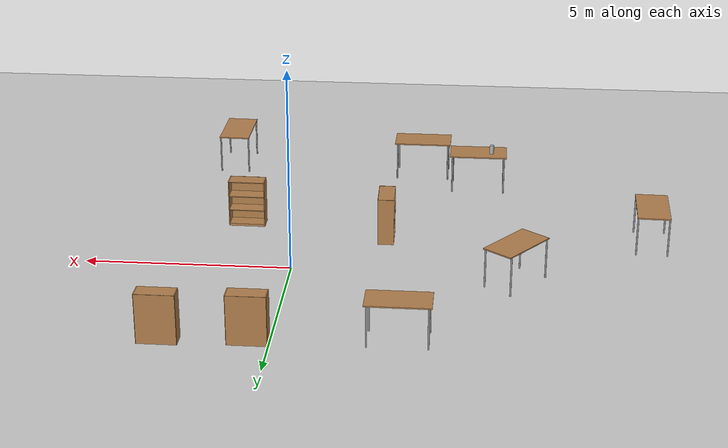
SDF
<sdf version="1.6">
 <world name="default">
  <model name="ground_plane">
   <static>1</static>
   <link name="link">
    <collision name="collision">
     <geometry><plane><normal>0 0 1</normal><size>100 100</size></plane></geometry>
     <surface>
      <contact><collide_bitmask>65535</collide_bitmask></contact>
      <friction><ode><mu>100</mu><mu2>50</mu2></ode></friction>
     </surface>
    </collision>
    <visual name="visual">
     <cast_shadows>0</cast_shadows>
     <geometry><plane><normal>0 0 1</normal><size>100 100</size></plane></geometry>
     <material>
      <script><uri>file://media/materials/scripts/gazebo.material</uri><name>Gazebo/Grey</name></script>
     </material>
    </visual>
   </link>
  </model>
  <model name="table">
   <static>1</static>
   <link name="link">
    <collision name="surface">
     <pose>0 0 1 0 -0 0</pose>
     <geometry><box><size>1.5 0.8 0.03</size></box></geometry>
     <surface><friction><ode><mu>0.6</mu><mu2>0.6</mu2></ode></friction></surface>
    </collision>
    <visual name="visual1">
     <pose>0 0 1 0 -0 0</pose>
     <geometry><box><size>1.5 0.8 0.03</size></box></geometry>
     <material>
      <script><uri>file://media/materials/scripts/gazebo.material</uri><name>Gazebo/Wood</name></script>
     </material>
    </visual>
    <collision name="front_left_leg">
     <pose>0.68 0.38 0.5 0 -0 0</pose>
     <geometry><cylinder><radius>0.02</radius><length>1</length></cylinder></geometry>
    </collision>
    <visual name="front_left_leg">
     <pose>0.68 0.38 0.5 0 -0 0</pose>
     <geometry><cylinder><radius>0.02</radius><length>1</length></cylinder></geometry>
     <material>
      <script><uri>file://media/materials/scripts/gazebo.material</uri><name>Gazebo/Grey</name></script>
     </material>
    </visual>
    <collision name="front_right_leg">
     <pose>0.68 -0.38 0.5 0 -0 0</pose>
     <geometry><cylinder><radius>0.02</radius><length>1</length></cylinder></geometry>
    </collision>
    <visual name="front_right_leg">
     <pose>0.68 -0.38 0.5 0 -0 0</pose>
     <geometry><cylinder><radius>0.02</radius><length>1</length></cylinder></geometry>
     <material>
      <script><uri>file://media/materials/scripts/gazebo.material</uri><name>Gazebo/Grey</name></script>
     </material>
    </visual>
    <collision name="back_right_leg">
     <pose>-0.68 -0.38 0.5 0 -0 0</pose>
     <geometry><cylinder><radius>0.02</radius><length>1</length></cylinder></geometry>
    </collision>
    <visual name="back_right_leg">
     <pose>-0.68 -0.38 0.5 0 -0 0</pose>
     <geometry><cylinder><radius>0.02</radius><length>1</length></cylinder></geometry>
     <material>
      <script><uri>file://media/materials/scripts/gazebo.material</uri><name>Gazebo/Grey</name></script>
     </material>
    </visual>
    <collision name="back_left_leg">
     <pose>-0.68 0.38 0.5 0 -0 0</pose>
     <geometry><cylinder><radius>0.02</radius><length>1</length></cylinder></geometry>
    </collision>
    <visual name="back_left_leg">
     <pose>-0.68 0.38 0.5 0 -0 0</pose>
     <geometry><cylinder><radius>0.02</radius><length>1</length></cylinder></geometry>
     <material>
      <script><uri>file://media/materials/scripts/gazebo.material</uri><name>Gazebo/Grey</name></script>
     </material>
    </visual>
   </link>
   <pose>-5.37303 0.274904 0 0 0 -2.22515</pose>
  </model>
  <model name="table_0">
   <static>1</static>
   <link name="link">
    <collision name="surface">
     <pose>0 0 1 0 -0 0</pose>
     <geometry><box><size>1.5 0.8 0.03</size></box></geometry>
     <surface><friction><ode><mu>0.6</mu><mu2>0.6</mu2></ode></friction></surface>
    </collision>
    <visual name="visual1">
     <pose>0 0 1 0 -0 0</pose>
     <geometry><box><size>1.5 0.8 0.03</size></box></geometry>
     <material>
      <script><uri>file://media/materials/scripts/gazebo.material</uri><name>Gazebo/Wood</name></script>
     </material>
    </visual>
    <collision name="front_left_leg">
     <pose>0.68 0.38 0.5 0 -0 0</pose>
     <geometry><cylinder><radius>0.02</radius><length>1</length></cylinder></geometry>
    </collision>
    <visual name="front_left_leg">
     <pose>0.68 0.38 0.5 0 -0 0</pose>
     <geometry><cylinder><radius>0.02</radius><length>1</length></cylinder></geometry>
     <material>
      <script><uri>file://media/materials/scripts/gazebo.material</uri><name>Gazebo/Grey</name></script>
     </material>
    </visual>
    <collision name="front_right_leg">
     <pose>0.68 -0.38 0.5 0 -0 0</pose>
     <geometry><cylinder><radius>0.02</radius><length>1</length></cylinder></geometry>
    </collision>
    <visual name="front_right_leg">
     <pose>0.68 -0.38 0.5 0 -0 0</pose>
     <geometry><cylinder><radius>0.02</radius><length>1</length></cylinder></geometry>
     <material>
      <script><uri>file://media/materials/scripts/gazebo.material</uri><name>Gazebo/Grey</name></script>
     </material>
    </visual>
    <collision name="back_right_leg">
     <pose>-0.68 -0.38 0.5 0 -0 0</pose>
     <geometry><cylinder><radius>0.02</radius><length>1</length></cylinder></geometry>
    </collision>
    <visual name="back_right_leg">
     <pose>-0.68 -0.38 0.5 0 -0 0</pose>
     <geometry><cylinder><radius>0.02</radius><length>1</length></cylinder></geometry>
     <material>
      <script><uri>file://media/materials/scripts/gazebo.material</uri><name>Gazebo/Grey</name></script>
     </material>
    </visual>
    <collision name="back_left_leg">
     <pose>-0.68 0.38 0.5 0 -0 0</pose>
     <geometry><cylinder><radius>0.02</radius><length>1</length></cylinder></geometry>
    </collision>
    <visual name="back_left_leg">
     <pose>-0.68 0.38 0.5 0 -0 0</pose>
     <geometry><cylinder><radius>0.02</radius><length>1</length></cylinder></geometry>
     <material>
      <script><uri>file://media/materials/scripts/gazebo.material</uri><name>Gazebo/Grey</name></script>
     </material>
    </visual>
   </link>
   <pose>-2.87312 -6.30679 0 0 -0 0</pose>
  </model>
  <model name="table_1">
   <static>1</static>
   <link name="link">
    <collision name="surface">
     <pose>0 0 1 0 -0 0</pose>
     <geometry><box><size>1.5 0.8 0.03</size></box></geometry>
     <surface><friction><ode><mu>0.6</mu><mu2>0.6</mu2></ode></friction></surface>
    </collision>
    <visual name="visual1">
     <pose>0 0 1 0 -0 0</pose>
     <geometry><box><size>1.5 0.8 0.03</size></box></geometry>
     <material>
      <script><uri>file://media/materials/scripts/gazebo.material</uri><name>Gazebo/Wood</name></script>
     </material>
    </visual>
    <collision name="front_left_leg">
     <pose>0.68 0.38 0.5 0 -0 0</pose>
     <geometry><cylinder><radius>0.02</radius><length>1</length></cylinder></geometry>
    </collision>
    <visual name="front_left_leg">
     <pose>0.68 0.38 0.5 0 -0 0</pose>
     <geometry><cylinder><radius>0.02</radius><length>1</length></cylinder></geometry>
     <material>
      <script><uri>file://media/materials/scripts/gazebo.material</uri><name>Gazebo/Grey</name></script>
     </material>
    </visual>
    <collision name="front_right_leg">
     <pose>0.68 -0.38 0.5 0 -0 0</pose>
     <geometry><cylinder><radius>0.02</radius><length>1</length></cylinder></geometry>
    </collision>
    <visual name="front_right_leg">
     <pose>0.68 -0.38 0.5 0 -0 0</pose>
     <geometry><cylinder><radius>0.02</radius><length>1</length></cylinder></geometry>
     <material>
      <script><uri>file://media/materials/scripts/gazebo.material</uri><name>Gazebo/Grey</name></script>
     </material>
    </visual>
    <collision name="back_right_leg">
     <pose>-0.68 -0.38 0.5 0 -0 0</pose>
     <geometry><cylinder><radius>0.02</radius><length>1</length></cylinder></geometry>
    </collision>
    <visual name="back_right_leg">
     <pose>-0.68 -0.38 0.5 0 -0 0</pose>
     <geometry><cylinder><radius>0.02</radius><length>1</length></cylinder></geometry>
     <material>
      <script><uri>file://media/materials/scripts/gazebo.material</uri><name>Gazebo/Grey</name></script>
     </material>
    </visual>
    <collision name="back_left_leg">
     <pose>-0.68 0.38 0.5 0 -0 0</pose>
     <geometry><cylinder><radius>0.02</radius><length>1</length></cylinder></geometry>
    </collision>
    <visual name="back_left_leg">
     <pose>-0.68 0.38 0.5 0 -0 0</pose>
     <geometry><cylinder><radius>0.02</radius><length>1</length></cylinder></geometry>
     <material>
      <script><uri>file://media/materials/scripts/gazebo.material</uri><name>Gazebo/Grey</name></script>
     </material>
    </visual>
   </link>
   <pose>-2.80982 3.3973 0 0 -0 0</pose>
  </model>
  <model name="table_2">
   <static>1</static>
   <link name="link">
    <collision name="surface">
     <pose>0 0 1 0 -0 0</pose>
     <geometry><box><size>1.5 0.8 0.03</size></box></geometry>
     <surface><friction><ode><mu>0.6</mu><mu2>0.6</mu2></ode></friction></surface>
    </collision>
    <visual name="visual1">
     <pose>0 0 1 0 -0 0</pose>
     <geometry><box><size>1.5 0.8 0.03</size></box></geometry>
     <material>
      <script><uri>file://media/materials/scripts/gazebo.material</uri><name>Gazebo/Wood</name></script>
     </material>
    </visual>
    <collision name="front_left_leg">
     <pose>0.68 0.38 0.5 0 -0 0</pose>
     <geometry><cylinder><radius>0.02</radius><length>1</length></cylinder></geometry>
    </collision>
    <visual name="front_left_leg">
     <pose>0.68 0.38 0.5 0 -0 0</pose>
     <geometry><cylinder><radius>0.02</radius><length>1</length></cylinder></geometry>
     <material>
      <script><uri>file://media/materials/scripts/gazebo.material</uri><name>Gazebo/Grey</name></script>
     </material>
    </visual>
    <collision name="front_right_leg">
     <pose>0.68 -0.38 0.5 0 -0 0</pose>
     <geometry><cylinder><radius>0.02</radius><length>1</length></cylinder></geometry>
    </collision>
    <visual name="front_right_leg">
     <pose>0.68 -0.38 0.5 0 -0 0</pose>
     <geometry><cylinder><radius>0.02</radius><length>1</length></cylinder></geometry>
     <material>
      <script><uri>file://media/materials/scripts/gazebo.material</uri><name>Gazebo/Grey</name></script>
     </material>
    </visual>
    <collision name="back_right_leg">
     <pose>-0.68 -0.38 0.5 0 -0 0</pose>
     <geometry><cylinder><radius>0.02</radius><length>1</length></cylinder></geometry>
    </collision>
    <visual name="back_right_leg">
     <pose>-0.68 -0.38 0.5 0 -0 0</pose>
     <geometry><cylinder><radius>0.02</radius><length>1</length></cylinder></geometry>
     <material>
      <script><uri>file://media/materials/scripts/gazebo.material</uri><name>Gazebo/Grey</name></script>
     </material>
    </visual>
    <collision name="back_left_leg">
     <pose>-0.68 0.38 0.5 0 -0 0</pose>
     <geometry><cylinder><radius>0.02</radius><length>1</length></cylinder></geometry>
    </collision>
    <visual name="back_left_leg">
     <pose>-0.68 0.38 0.5 0 -0 0</pose>
     <geometry><cylinder><radius>0.02</radius><length>1</length></cylinder></geometry>
     <material>
      <script><uri>file://media/materials/scripts/gazebo.material</uri><name>Gazebo/Grey</name></script>
     </material>
    </visual>
   </link>
   <pose>-4.38739 -5.47523 0 0 -0 0</pose>
  </model>
  <model name="table_3">
   <static>1</static>
   <link name="link">
    <collision name="surface">
     <pose>0 0 1 0 -0 0</pose>
     <geometry><box><size>1.5 0.8 0.03</size></box></geometry>
     <surface><friction><ode><mu>0.6</mu><mu2>0.6</mu2></ode></friction></surface>
    </collision>
    <visual name="visual1">
     <pose>0 0 1 0 -0 0</pose>
     <geometry><box><size>1.5 0.8 0.03</size></box></geometry>
     <material>
      <script><uri>file://media/materials/scripts/gazebo.material</uri><name>Gazebo/Wood</name></script>
     </material>
    </visual>
    <collision name="front_left_leg">
     <pose>0.68 0.38 0.5 0 -0 0</pose>
     <geometry><cylinder><radius>0.02</radius><length>1</length></cylinder></geometry>
    </collision>
    <visual name="front_left_leg">
     <pose>0.68 0.38 0.5 0 -0 0</pose>
     <geometry><cylinder><radius>0.02</radius><length>1</length></cylinder></geometry>
     <material>
      <script><uri>file://media/materials/scripts/gazebo.material</uri><name>Gazebo/Grey</name></script>
     </material>
    </visual>
    <collision name="front_right_leg">
     <pose>0.68 -0.38 0.5 0 -0 0</pose>
     <geometry><cylinder><radius>0.02</radius><length>1</length></cylinder></geometry>
    </collision>
    <visual name="front_right_leg">
     <pose>0.68 -0.38 0.5 0 -0 0</pose>
     <geometry><cylinder><radius>0.02</radius><length>1</length></cylinder></geometry>
     <material>
      <script><uri>file://media/materials/scripts/gazebo.material</uri><name>Gazebo/Grey</name></script>
     </material>
    </visual>
    <collision name="back_right_leg">
     <pose>-0.68 -0.38 0.5 0 -0 0</pose>
     <geometry><cylinder><radius>0.02</radius><length>1</length></cylinder></geometry>
    </collision>
    <visual name="back_right_leg">
     <pose>-0.68 -0.38 0.5 0 -0 0</pose>
     <geometry><cylinder><radius>0.02</radius><length>1</length></cylinder></geometry>
     <material>
      <script><uri>file://media/materials/scripts/gazebo.material</uri><name>Gazebo/Grey</name></script>
     </material>
    </visual>
    <collision name="back_left_leg">
     <pose>-0.68 0.38 0.5 0 -0 0</pose>
     <geometry><cylinder><radius>0.02</radius><length>1</length></cylinder></geometry>
    </collision>
    <visual name="back_left_leg">
     <pose>-0.68 0.38 0.5 0 -0 0</pose>
     <geometry><cylinder><radius>0.02</radius><length>1</length></cylinder></geometry>
     <material>
      <script><uri>file://media/materials/scripts/gazebo.material</uri><name>Gazebo/Grey</name></script>
     </material>
    </visual>
   </link>
   <pose>-8.73159 -2.16161 0 0 0 -1.59924</pose>
  </model>
  <model name="beer">
   <link name="link">
    <pose>0 0 0.115 0 -0 0</pose>
    <inertial>
     <mass>0.39</mass>
     <inertia><ixx>0.00058</ixx><ixy>0</ixy><ixz>0</ixz><iyy>0.00058</iyy><iyz>0</iyz><izz>0.00019</izz></inertia>
    </inertial>
    <collision name="collision">
     <geometry><cylinder><radius>0.055</radius><length>0.23</length></cylinder></geometry>
    </collision>
    <visual name="visual">
     <geometry><cylinder><radius>0.055</radius><length>0.23</length></cylinder></geometry>
     <material>
      <script>
       <uri>model://beer/materials/scripts</uri>
       <uri>model://beer/materials/textures</uri>
       <name>Beer/Diffuse</name>
      </script>
     </material>
    </visual>
   </link>
   <pose>-4.73816 -5.39807 1.01499 2e-06 -2.7e-05 0.00187</pose>
  </model>
  <model name="bookshelf">
   <static>1</static>
   <link name="link">
    <inertial><mass>1</mass></inertial>
    <collision name="back">
     <pose>0 0.005 0.6 0 -0 0</pose>
     <geometry><box><size>0.9 0.01 1.2</size></box></geometry>
    </collision>
    <visual name="visual1">
     <pose>0 0.005 0.6 0 -0 0</pose>
     <geometry><box><size>0.9 0.01 1.2</size></box></geometry>
     <material>
      <script><uri>file://media/materials/scripts/gazebo.material</uri><name>Gazebo/Wood</name></script>
     </material>
    </visual>
    <collision name="left_side">
     <pose>0.45 -0.195 0.6 0 -0 0</pose>
     <geometry><box><size>0.02 0.4 1.2</size></box></geometry>
    </collision>
    <visual name="visual2">
     <pose>0.45 -0.195 0.6 0 -0 0</pose>
     <geometry><box><size>0.02 0.4 1.2</size></box></geometry>
     <material>
      <script><uri>file://media/materials/scripts/gazebo.material</uri><name>Gazebo/Wood</name></script>
     </material>
    </visual>
    <collision name="right_side">
     <pose>-0.45 -0.195 0.6 0 -0 0</pose>
     <geometry><box><size>0.02 0.4 1.2</size></box></geometry>
    </collision>
    <visual name="visual3">
     <pose>-0.45 -0.195 0.6 0 -0 0</pose>
     <geometry><box><size>0.02 0.4 1.2</size></box></geometry>
     <material>
      <script><uri>file://media/materials/scripts/gazebo.material</uri><name>Gazebo/Wood</name></script>
     </material>
    </visual>
    <collision name="bottom">
     <pose>0 -0.195 0.03 0 -0 0</pose>
     <geometry><box><size>0.88 0.4 0.06</size></box></geometry>
    </collision>
    <visual name="visual4">
     <pose>0 -0.195 0.03 0 -0 0</pose>
     <geometry><box><size>0.88 0.4 0.06</size></box></geometry>
     <material>
      <script><uri>file://media/materials/scripts/gazebo.material</uri><name>Gazebo/Wood</name></script>
     </material>
    </visual>
    <collision name="top">
     <pose>0 -0.195 1.19 0 -0 0</pose>
     <geometry><box><size>0.88 0.4 0.02</size></box></geometry>
    </collision>
    <visual name="visual5">
     <pose>0 -0.195 1.19 0 -0 0</pose>
     <geometry><box><size>0.88 0.4 0.02</size></box></geometry>
     <material>
      <script><uri>file://media/materials/scripts/gazebo.material</uri><name>Gazebo/Wood</name></script>
     </material>
    </visual>
    <collision name="low_shelf">
     <pose>0 -0.195 0.43 0 -0 0</pose>
     <geometry><box><size>0.88 0.4 0.02</size></box></geometry>
    </collision>
    <visual name="visual6">
     <pose>0 -0.195 0.43 0 -0 0</pose>
     <geometry><box><size>0.88 0.4 0.02</size></box></geometry>
     <material>
      <script><uri>file://media/materials/scripts/gazebo.material</uri><name>Gazebo/Wood</name></script>
     </material>
    </visual>
    <collision name="high_shelf">
     <pose>0 -0.195 0.8 0 -0 0</pose>
     <geometry><box><size>0.88 0.4 0.02</size></box></geometry>
    </collision>
    <visual name="visual7">
     <pose>0 -0.195 0.8 0 -0 0</pose>
     <geometry><box><size>0.88 0.4 0.02</size></box></geometry>
     <material>
      <script><uri>file://media/materials/scripts/gazebo.material</uri><name>Gazebo/Wood</name></script>
     </material>
    </visual>
   </link>
   <pose>0.469107 3.9315 0 0 -0 0</pose>
  </model>
  <model name="bookshelf_0">
   <static>1</static>
   <link name="link">
    <inertial><mass>1</mass></inertial>
    <collision name="back">
     <pose>0 0.005 0.6 0 -0 0</pose>
     <geometry><box><size>0.9 0.01 1.2</size></box></geometry>
    </collision>
    <visual name="visual1">
     <pose>0 0.005 0.6 0 -0 0</pose>
     <geometry><box><size>0.9 0.01 1.2</size></box></geometry>
     <material>
      <script><uri>file://media/materials/scripts/gazebo.material</uri><name>Gazebo/Wood</name></script>
     </material>
    </visual>
    <collision name="left_side">
     <pose>0.45 -0.195 0.6 0 -0 0</pose>
     <geometry><box><size>0.02 0.4 1.2</size></box></geometry>
    </collision>
    <visual name="visual2">
     <pose>0.45 -0.195 0.6 0 -0 0</pose>
     <geometry><box><size>0.02 0.4 1.2</size></box></geometry>
     <material>
      <script><uri>file://media/materials/scripts/gazebo.material</uri><name>Gazebo/Wood</name></script>
     </material>
    </visual>
    <collision name="right_side">
     <pose>-0.45 -0.195 0.6 0 -0 0</pose>
     <geometry><box><size>0.02 0.4 1.2</size></box></geometry>
    </collision>
    <visual name="visual3">
     <pose>-0.45 -0.195 0.6 0 -0 0</pose>
     <geometry><box><size>0.02 0.4 1.2</size></box></geometry>
     <material>
      <script><uri>file://media/materials/scripts/gazebo.material</uri><name>Gazebo/Wood</name></script>
     </material>
    </visual>
    <collision name="bottom">
     <pose>0 -0.195 0.03 0 -0 0</pose>
     <geometry><box><size>0.88 0.4 0.06</size></box></geometry>
    </collision>
    <visual name="visual4">
     <pose>0 -0.195 0.03 0 -0 0</pose>
     <geometry><box><size>0.88 0.4 0.06</size></box></geometry>
     <material>
      <script><uri>file://media/materials/scripts/gazebo.material</uri><name>Gazebo/Wood</name></script>
     </material>
    </visual>
    <collision name="top">
     <pose>0 -0.195 1.19 0 -0 0</pose>
     <geometry><box><size>0.88 0.4 0.02</size></box></geometry>
    </collision>
    <visual name="visual5">
     <pose>0 -0.195 1.19 0 -0 0</pose>
     <geometry><box><size>0.88 0.4 0.02</size></box></geometry>
     <material>
      <script><uri>file://media/materials/scripts/gazebo.material</uri><name>Gazebo/Wood</name></script>
     </material>
    </visual>
    <collision name="low_shelf">
     <pose>0 -0.195 0.43 0 -0 0</pose>
     <geometry><box><size>0.88 0.4 0.02</size></box></geometry>
    </collision>
    <visual name="visual6">
     <pose>0 -0.195 0.43 0 -0 0</pose>
     <geometry><box><size>0.88 0.4 0.02</size></box></geometry>
     <material>
      <script><uri>file://media/materials/scripts/gazebo.material</uri><name>Gazebo/Wood</name></script>
     </material>
    </visual>
    <collision name="high_shelf">
     <pose>0 -0.195 0.8 0 -0 0</pose>
     <geometry><box><size>0.88 0.4 0.02</size></box></geometry>
    </collision>
    <visual name="visual7">
     <pose>0 -0.195 0.8 0 -0 0</pose>
     <geometry><box><size>0.88 0.4 0.02</size></box></geometry>
     <material>
      <script><uri>file://media/materials/scripts/gazebo.material</uri><name>Gazebo/Wood</name></script>
     </material>
    </visual>
   </link>
   <pose>2.44857 4.02681 0 0 -0 0</pose>
  </model>
  <model name="bookshelf_1">
   <static>1</static>
   <link name="link">
    <inertial><mass>1</mass></inertial>
    <collision name="back">
     <pose>0 0.005 0.6 0 -0 0</pose>
     <geometry><box><size>0.9 0.01 1.2</size></box></geometry>
    </collision>
    <visual name="visual1">
     <pose>0 0.005 0.6 0 -0 0</pose>
     <geometry><box><size>0.9 0.01 1.2</size></box></geometry>
     <material>
      <script><uri>file://media/materials/scripts/gazebo.material</uri><name>Gazebo/Wood</name></script>
     </material>
    </visual>
    <collision name="left_side">
     <pose>0.45 -0.195 0.6 0 -0 0</pose>
     <geometry><box><size>0.02 0.4 1.2</size></box></geometry>
    </collision>
    <visual name="visual2">
     <pose>0.45 -0.195 0.6 0 -0 0</pose>
     <geometry><box><size>0.02 0.4 1.2</size></box></geometry>
     <material>
      <script><uri>file://media/materials/scripts/gazebo.material</uri><name>Gazebo/Wood</name></script>
     </material>
    </visual>
    <collision name="right_side">
     <pose>-0.45 -0.195 0.6 0 -0 0</pose>
     <geometry><box><size>0.02 0.4 1.2</size></box></geometry>
    </collision>
    <visual name="visual3">
     <pose>-0.45 -0.195 0.6 0 -0 0</pose>
     <geometry><box><size>0.02 0.4 1.2</size></box></geometry>
     <material>
      <script><uri>file://media/materials/scripts/gazebo.material</uri><name>Gazebo/Wood</name></script>
     </material>
    </visual>
    <collision name="bottom">
     <pose>0 -0.195 0.03 0 -0 0</pose>
     <geometry><box><size>0.88 0.4 0.06</size></box></geometry>
    </collision>
    <visual name="visual4">
     <pose>0 -0.195 0.03 0 -0 0</pose>
     <geometry><box><size>0.88 0.4 0.06</size></box></geometry>
     <material>
      <script><uri>file://media/materials/scripts/gazebo.material</uri><name>Gazebo/Wood</name></script>
     </material>
    </visual>
    <collision name="top">
     <pose>0 -0.195 1.19 0 -0 0</pose>
     <geometry><box><size>0.88 0.4 0.02</size></box></geometry>
    </collision>
    <visual name="visual5">
     <pose>0 -0.195 1.19 0 -0 0</pose>
     <geometry><box><size>0.88 0.4 0.02</size></box></geometry>
     <material>
      <script><uri>file://media/materials/scripts/gazebo.material</uri><name>Gazebo/Wood</name></script>
     </material>
    </visual>
    <collision name="low_shelf">
     <pose>0 -0.195 0.43 0 -0 0</pose>
     <geometry><box><size>0.88 0.4 0.02</size></box></geometry>
    </collision>
    <visual name="visual6">
     <pose>0 -0.195 0.43 0 -0 0</pose>
     <geometry><box><size>0.88 0.4 0.02</size></box></geometry>
     <material>
      <script><uri>file://media/materials/scripts/gazebo.material</uri><name>Gazebo/Wood</name></script>
     </material>
    </visual>
    <collision name="high_shelf">
     <pose>0 -0.195 0.8 0 -0 0</pose>
     <geometry><box><size>0.88 0.4 0.02</size></box></geometry>
    </collision>
    <visual name="visual7">
     <pose>0 -0.195 0.8 0 -0 0</pose>
     <geometry><box><size>0.88 0.4 0.02</size></box></geometry>
     <material>
      <script><uri>file://media/materials/scripts/gazebo.material</uri><name>Gazebo/Wood</name></script>
     </material>
    </visual>
   </link>
   <pose>-1.9728 -2.01118 0 0 0 -1.54763</pose>
  </model>
  <model name="table_10">
   <static>1</static>
   <link name="link">
    <collision name="surface">
     <pose>0 0 1 0 -0 0</pose>
     <geometry><box><size>1.5 0.8 0.03</size></box></geometry>
     <surface><friction><ode><mu>0.6</mu><mu2>0.6</mu2></ode></friction></surface>
    </collision>
    <visual name="visual1">
     <pose>0 0 1 0 -0 0</pose>
     <geometry><box><size>1.5 0.8 0.03</size></box></geometry>
     <material>
      <script><uri>file://media/materials/scripts/gazebo.material</uri><name>Gazebo/Wood</name></script>
     </material>
    </visual>
    <collision name="front_left_leg">
     <pose>0.68 0.38 0.5 0 -0 0</pose>
     <geometry><cylinder><radius>0.02</radius><length>1</length></cylinder></geometry>
    </collision>
    <visual name="front_left_leg">
     <pose>0.68 0.38 0.5 0 -0 0</pose>
     <geometry><cylinder><radius>0.02</radius><length>1</length></cylinder></geometry>
     <material>
      <script><uri>file://media/materials/scripts/gazebo.material</uri><name>Gazebo/Grey</name></script>
     </material>
    </visual>
    <collision name="front_right_leg">
     <pose>0.68 -0.38 0.5 0 -0 0</pose>
     <geometry><cylinder><radius>0.02</radius><length>1</length></cylinder></geometry>
    </collision>
    <visual name="front_right_leg">
     <pose>0.68 -0.38 0.5 0 -0 0</pose>
     <geometry><cylinder><radius>0.02</radius><length>1</length></cylinder></geometry>
     <material>
      <script><uri>file://media/materials/scripts/gazebo.material</uri><name>Gazebo/Grey</name></script>
     </material>
    </visual>
    <collision name="back_right_leg">
     <pose>-0.68 -0.38 0.5 0 -0 0</pose>
     <geometry><cylinder><radius>0.02</radius><length>1</length></cylinder></geometry>
    </collision>
    <visual name="back_right_leg">
     <pose>-0.68 -0.38 0.5 0 -0 0</pose>
     <geometry><cylinder><radius>0.02</radius><length>1</length></cylinder></geometry>
     <material>
      <script><uri>file://media/materials/scripts/gazebo.material</uri><name>Gazebo/Grey</name></script>
     </material>
    </visual>
    <collision name="back_left_leg">
     <pose>-0.68 0.38 0.5 0 -0 0</pose>
     <geometry><cylinder><radius>0.02</radius><length>1</length></cylinder></geometry>
    </collision>
    <visual name="back_left_leg">
     <pose>-0.68 0.38 0.5 0 -0 0</pose>
     <geometry><cylinder><radius>0.02</radius><length>1</length></cylinder></geometry>
     <material>
      <script><uri>file://media/materials/scripts/gazebo.material</uri><name>Gazebo/Grey</name></script>
     </material>
    </visual>
   </link>
   <pose>2.29462 -6.7326 0 0 0 -1.58606</pose>
  </model>
  <model name="bookshelf_2">
   <static>1</static>
   <link name="link">
    <inertial><mass>1</mass></inertial>
    <collision name="back">
     <pose>0 0.005 0.6 0 -0 0</pose>
     <geometry><box><size>0.9 0.01 1.2</size></box></geometry>
    </collision>
    <visual name="visual1">
     <pose>0 0.005 0.6 0 -0 0</pose>
     <geometry><box><size>0.9 0.01 1.2</size></box></geometry>
     <material>
      <script><uri>file://media/materials/scripts/gazebo.material</uri><name>Gazebo/Wood</name></script>
     </material>
    </visual>
    <collision name="left_side">
     <pose>0.45 -0.195 0.6 0 -0 0</pose>
     <geometry><box><size>0.02 0.4 1.2</size></box></geometry>
    </collision>
    <visual name="visual2">
     <pose>0.45 -0.195 0.6 0 -0 0</pose>
     <geometry><box><size>0.02 0.4 1.2</size></box></geometry>
     <material>
      <script><uri>file://media/materials/scripts/gazebo.material</uri><name>Gazebo/Wood</name></script>
     </material>
    </visual>
    <collision name="right_side">
     <pose>-0.45 -0.195 0.6 0 -0 0</pose>
     <geometry><box><size>0.02 0.4 1.2</size></box></geometry>
    </collision>
    <visual name="visual3">
     <pose>-0.45 -0.195 0.6 0 -0 0</pose>
     <geometry><box><size>0.02 0.4 1.2</size></box></geometry>
     <material>
      <script><uri>file://media/materials/scripts/gazebo.material</uri><name>Gazebo/Wood</name></script>
     </material>
    </visual>
    <collision name="bottom">
     <pose>0 -0.195 0.03 0 -0 0</pose>
     <geometry><box><size>0.88 0.4 0.06</size></box></geometry>
    </collision>
    <visual name="visual4">
     <pose>0 -0.195 0.03 0 -0 0</pose>
     <geometry><box><size>0.88 0.4 0.06</size></box></geometry>
     <material>
      <script><uri>file://media/materials/scripts/gazebo.material</uri><name>Gazebo/Wood</name></script>
     </material>
    </visual>
    <collision name="top">
     <pose>0 -0.195 1.19 0 -0 0</pose>
     <geometry><box><size>0.88 0.4 0.02</size></box></geometry>
    </collision>
    <visual name="visual5">
     <pose>0 -0.195 1.19 0 -0 0</pose>
     <geometry><box><size>0.88 0.4 0.02</size></box></geometry>
     <material>
      <script><uri>file://media/materials/scripts/gazebo.material</uri><name>Gazebo/Wood</name></script>
     </material>
    </visual>
    <collision name="low_shelf">
     <pose>0 -0.195 0.43 0 -0 0</pose>
     <geometry><box><size>0.88 0.4 0.02</size></box></geometry>
    </collision>
    <visual name="visual6">
     <pose>0 -0.195 0.43 0 -0 0</pose>
     <geometry><box><size>0.88 0.4 0.02</size></box></geometry>
     <material>
      <script><uri>file://media/materials/scripts/gazebo.material</uri><name>Gazebo/Wood</name></script>
     </material>
    </visual>
    <collision name="high_shelf">
     <pose>0 -0.195 0.8 0 -0 0</pose>
     <geometry><box><size>0.88 0.4 0.02</size></box></geometry>
    </collision>
    <visual name="visual7">
     <pose>0 -0.195 0.8 0 -0 0</pose>
     <geometry><box><size>0.88 0.4 0.02</size></box></geometry>
     <material>
      <script><uri>file://media/materials/scripts/gazebo.material</uri><name>Gazebo/Wood</name></script>
     </material>
    </visual>
   </link>
   <pose>1.41851 -2.78542 0 0 -0 3.13328</pose>
  </model>
 </world>
</sdf>
